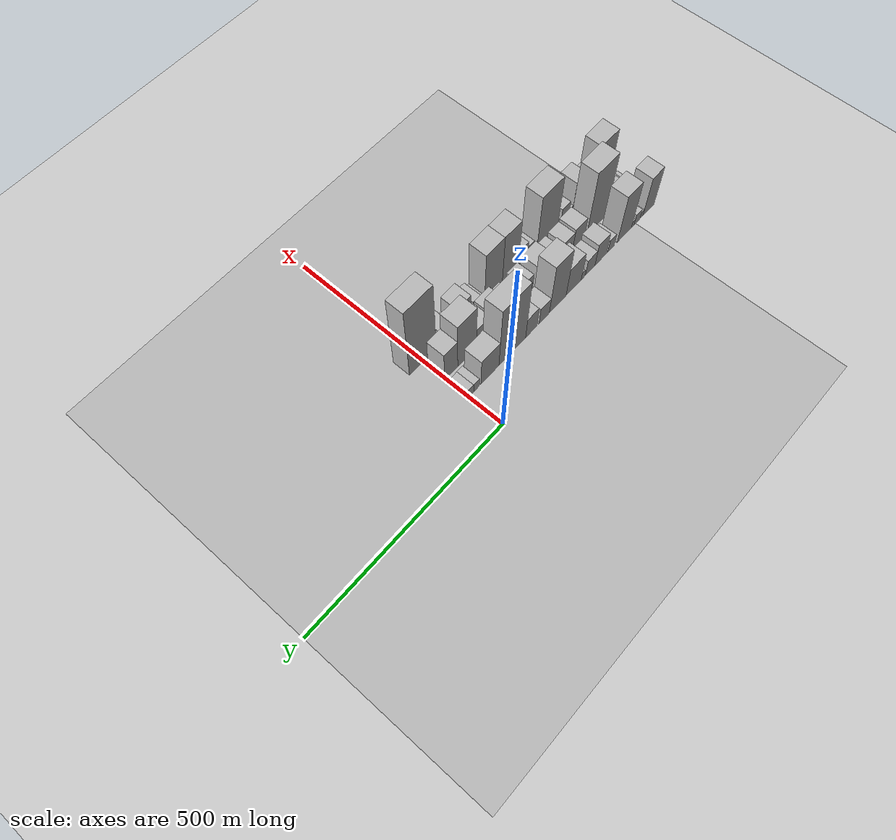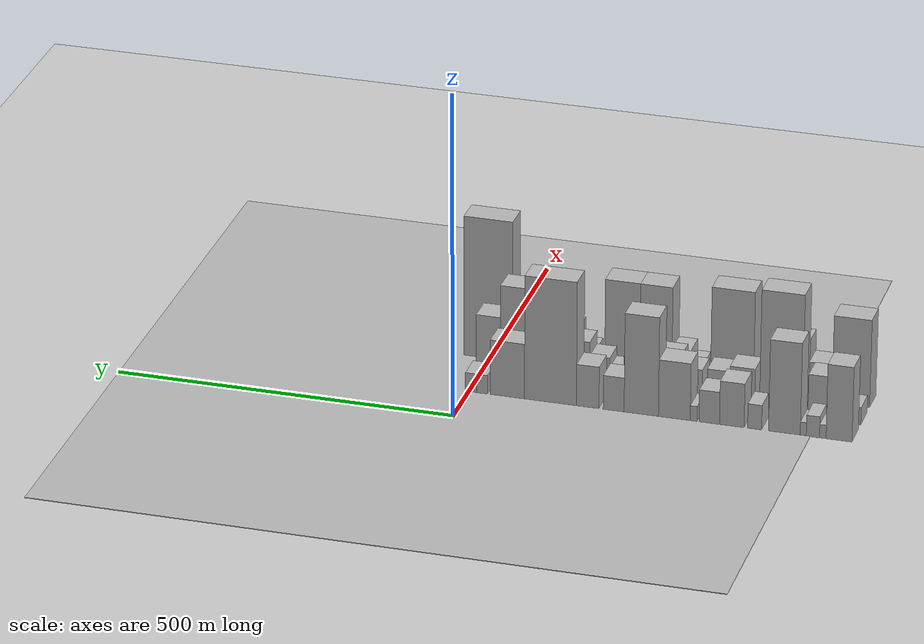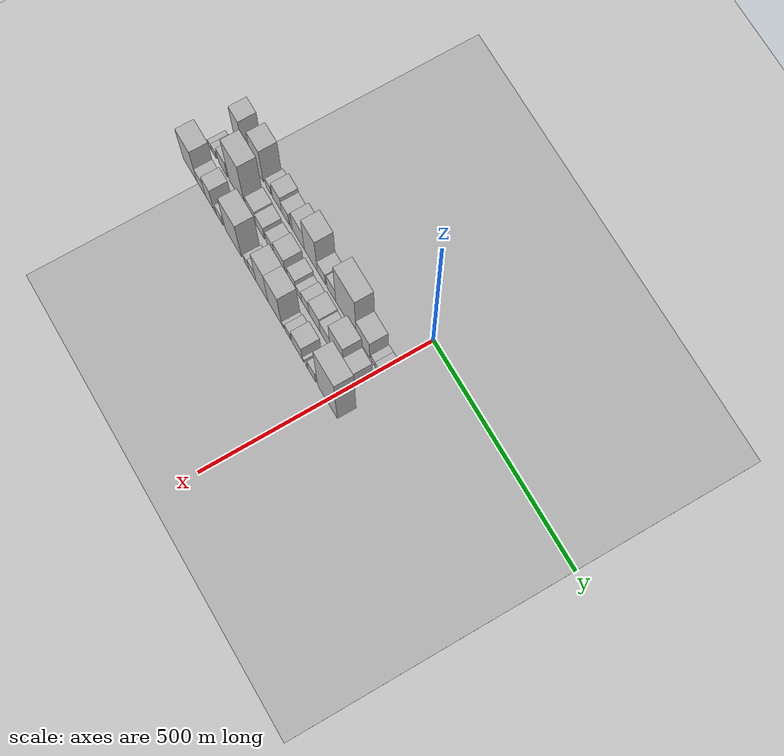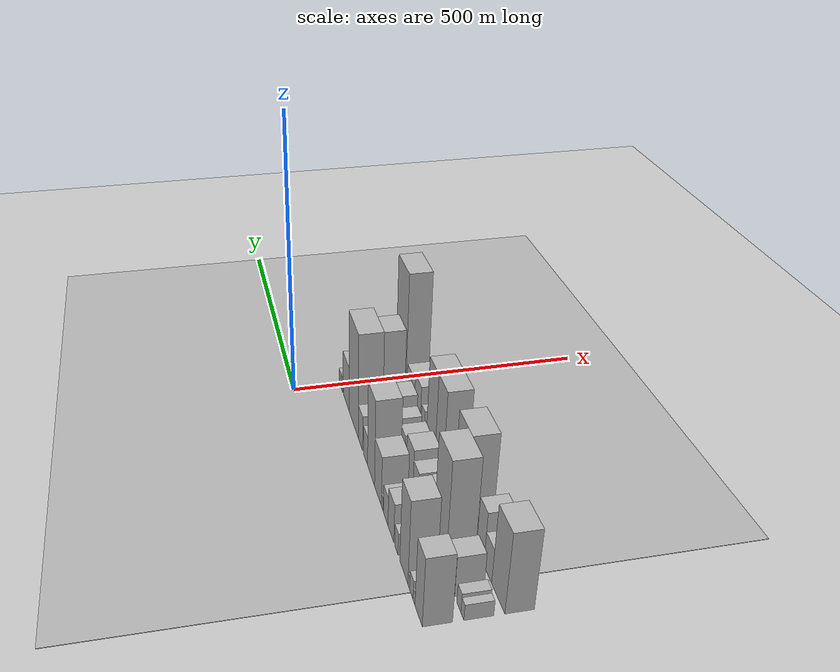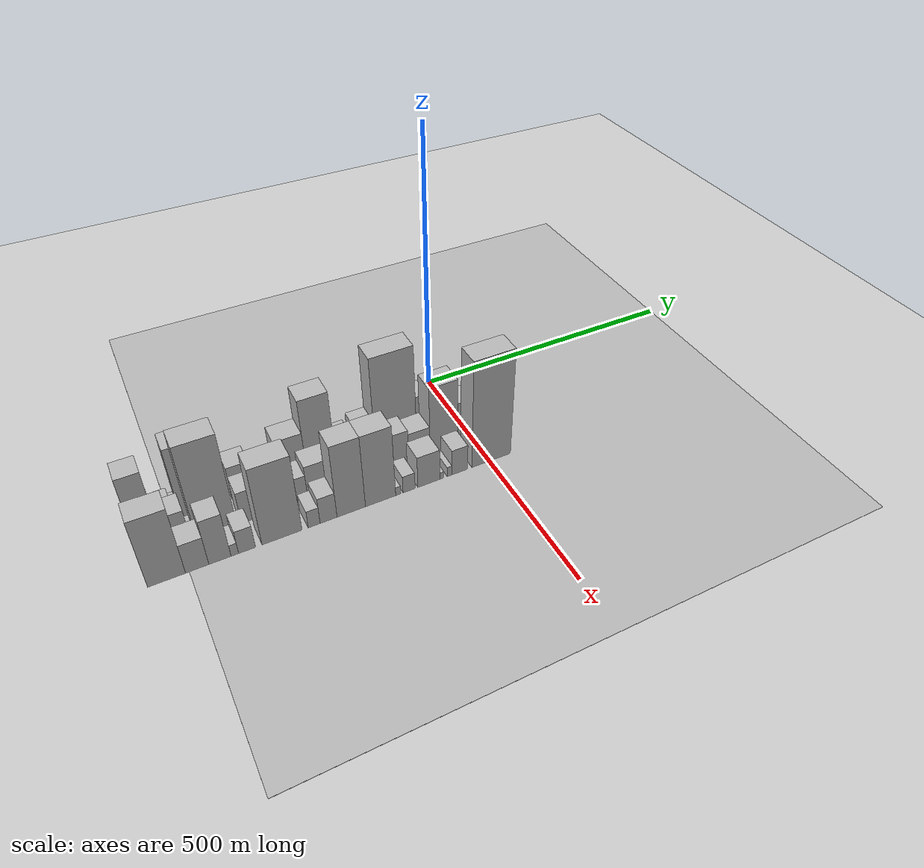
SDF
<sdf version="1.6">
 <world name="default">
  <include><name>ground_plane_1</name><uri>model://HANNAS_ground_plane</uri></include>
  <include>
   <name>ground_plane_2</name>
   <uri>model://HANNAS_ground_plane</uri>
   <pose>100 0 0  0 0 0</pose>
  </include>
  <model name="building_1">
   <static>1</static>
   <pose>100.0000 -541.2962 0 0.000000 0.000000 0.000000</pose>
   <link name="link">
    <pose>0 0 58.50 0 0 0</pose>
    <collision name="collision"><geometry><box><size>40.0000 37.4076 117.0000</size></box></geometry></collision>
    <visual name="visual">
     <cast_shadows>0</cast_shadows>
     <geometry><box><size>40.0000 37.4076 117.0000</size></box></geometry>
     <material>
      <script>
       <uri>model://HANNAS_wall/materials/scripts</uri>
       <uri>model://HANNAS_wall/materials/textures</uri>
       <name>vrc/HANNAS_wall</name>
      </script>
     </material>
    </visual>
   </link>
  </model>
  <model name="building_2">
   <static>1</static>
   <pose>100.0000 -517.8946 0 0.000000 0.000000 0.000000</pose>
   <link name="link">
    <pose>0 0 10.50 0 0 0</pose>
    <collision name="collision"><geometry><box><size>40.0000 9.3956 21.0000</size></box></geometry></collision>
    <visual name="visual">
     <cast_shadows>0</cast_shadows>
     <geometry><box><size>40.0000 9.3956 21.0000</size></box></geometry>
     <material>
      <script>
       <uri>model://HANNAS_wall/materials/scripts</uri>
       <uri>model://HANNAS_wall/materials/textures</uri>
       <name>vrc/HANNAS_wall</name>
      </script>
     </material>
    </visual>
   </link>
  </model>
  <model name="building_3">
   <static>1</static>
   <pose>100.0000 -503.5734 0 0.000000 0.000000 0.000000</pose>
   <link name="link">
    <pose>0 0 16.50 0 0 0</pose>
    <collision name="collision"><geometry><box><size>40.0000 19.2466 33.0000</size></box></geometry></collision>
    <visual name="visual">
     <cast_shadows>0</cast_shadows>
     <geometry><box><size>40.0000 19.2466 33.0000</size></box></geometry>
     <material>
      <script>
       <uri>model://HANNAS_wall/materials/scripts</uri>
       <uri>model://HANNAS_wall/materials/textures</uri>
       <name>vrc/HANNAS_wall</name>
      </script>
     </material>
    </visual>
   </link>
  </model>
  <model name="building_4">
   <static>1</static>
   <pose>100.0000 -489.6087 0 0.000000 0.000000 0.000000</pose>
   <link name="link">
    <pose>0 0 10.50 0 0 0</pose>
    <collision name="collision"><geometry><box><size>40.0000 8.6828 21.0000</size></box></geometry></collision>
    <visual name="visual">
     <cast_shadows>0</cast_shadows>
     <geometry><box><size>40.0000 8.6828 21.0000</size></box></geometry>
     <material>
      <script>
       <uri>model://HANNAS_wall/materials/scripts</uri>
       <uri>model://HANNAS_wall/materials/textures</uri>
       <name>vrc/HANNAS_wall</name>
      </script>
     </material>
    </visual>
   </link>
  </model>
  <model name="building_5">
   <static>1</static>
   <pose>100.0000 -462.3022 0 0.000000 0.000000 0.000000</pose>
   <link name="link">
    <pose>0 0 72.00 0 0 0</pose>
    <collision name="collision"><geometry><box><size>40.0000 45.9303 144.0000</size></box></geometry></collision>
    <visual name="visual">
     <cast_shadows>0</cast_shadows>
     <geometry><box><size>40.0000 45.9303 144.0000</size></box></geometry>
     <material>
      <script>
       <uri>model://HANNAS_wall/materials/scripts</uri>
       <uri>model://HANNAS_wall/materials/textures</uri>
       <name>vrc/HANNAS_wall</name>
      </script>
     </material>
    </visual>
   </link>
  </model>
  <model name="building_6">
   <static>1</static>
   <pose>100.0000 -419.1466 0 0.000000 0.000000 0.000000</pose>
   <link name="link">
    <pose>0 0 19.50 0 0 0</pose>
    <collision name="collision"><geometry><box><size>40.0000 20.3808 39.0000</size></box></geometry></collision>
    <visual name="visual">
     <cast_shadows>0</cast_shadows>
     <geometry><box><size>40.0000 20.3808 39.0000</size></box></geometry>
     <material>
      <script>
       <uri>model://HANNAS_wall/materials/scripts</uri>
       <uri>model://HANNAS_wall/materials/textures</uri>
       <name>vrc/HANNAS_wall</name>
      </script>
     </material>
    </visual>
   </link>
  </model>
  <model name="building_7">
   <static>1</static>
   <pose>100.0000 -386.0449 0 0.000000 0.000000 0.000000</pose>
   <link name="link">
    <pose>0 0 34.50 0 0 0</pose>
    <collision name="collision"><geometry><box><size>40.0000 35.8226 69.0000</size></box></geometry></collision>
    <visual name="visual">
     <cast_shadows>0</cast_shadows>
     <geometry><box><size>40.0000 35.8226 69.0000</size></box></geometry>
     <material>
      <script>
       <uri>model://HANNAS_wall/materials/scripts</uri>
       <uri>model://HANNAS_wall/materials/textures</uri>
       <name>vrc/HANNAS_wall</name>
      </script>
     </material>
    </visual>
   </link>
  </model>
  <model name="building_8">
   <static>1</static>
   <pose>100.0000 -353.2586 0 0.000000 0.000000 0.000000</pose>
   <link name="link">
    <pose>0 0 25.50 0 0 0</pose>
    <collision name="collision"><geometry><box><size>40.0000 29.7500 51.0000</size></box></geometry></collision>
    <visual name="visual">
     <cast_shadows>0</cast_shadows>
     <geometry><box><size>40.0000 29.7500 51.0000</size></box></geometry>
     <material>
      <script>
       <uri>model://HANNAS_wall/materials/scripts</uri>
       <uri>model://HANNAS_wall/materials/textures</uri>
       <name>vrc/HANNAS_wall</name>
      </script>
     </material>
    </visual>
   </link>
  </model>
  <model name="building_9">
   <static>1</static>
   <pose>100.0000 -330.4575 0 0.000000 0.000000 0.000000</pose>
   <link name="link">
    <pose>0 0 12.00 0 0 0</pose>
    <collision name="collision"><geometry><box><size>40.0000 9.8521 24.0000</size></box></geometry></collision>
    <visual name="visual">
     <cast_shadows>0</cast_shadows>
     <geometry><box><size>40.0000 9.8521 24.0000</size></box></geometry>
     <material>
      <script>
       <uri>model://HANNAS_wall/materials/scripts</uri>
       <uri>model://HANNAS_wall/materials/textures</uri>
       <name>vrc/HANNAS_wall</name>
      </script>
     </material>
    </visual>
   </link>
  </model>
  <model name="building_10">
   <static>1</static>
   <pose>100.0000 -302.2651 0 0.000000 0.000000 0.000000</pose>
   <link name="link">
    <pose>0 0 45.00 0 0 0</pose>
    <collision name="collision"><geometry><box><size>40.0000 46.5325 90.0000</size></box></geometry></collision>
    <visual name="visual">
     <cast_shadows>0</cast_shadows>
     <geometry><box><size>40.0000 46.5325 90.0000</size></box></geometry>
     <material>
      <script>
       <uri>model://HANNAS_wall/materials/scripts</uri>
       <uri>model://HANNAS_wall/materials/textures</uri>
       <name>vrc/HANNAS_wall</name>
      </script>
     </material>
    </visual>
   </link>
  </model>
  <model name="building_11">
   <static>1</static>
   <pose>100.0000 -253.8668 0 0.000000 0.000000 0.000000</pose>
   <link name="link">
    <pose>0 0 78.00 0 0 0</pose>
    <collision name="collision"><geometry><box><size>40.0000 50.2642 156.0000</size></box></geometry></collision>
    <visual name="visual">
     <cast_shadows>0</cast_shadows>
     <geometry><box><size>40.0000 50.2642 156.0000</size></box></geometry>
     <material>
      <script>
       <uri>model://HANNAS_wall/materials/scripts</uri>
       <uri>model://HANNAS_wall/materials/textures</uri>
       <name>vrc/HANNAS_wall</name>
      </script>
     </material>
    </visual>
   </link>
  </model>
  <model name="building_12">
   <static>1</static>
   <pose>100.0000 -213.3457 0 0.000000 0.000000 0.000000</pose>
   <link name="link">
    <pose>0 0 27.00 0 0 0</pose>
    <collision name="collision"><geometry><box><size>40.0000 30.7780 54.0000</size></box></geometry></collision>
    <visual name="visual">
     <cast_shadows>0</cast_shadows>
     <geometry><box><size>40.0000 30.7780 54.0000</size></box></geometry>
     <material>
      <script>
       <uri>model://HANNAS_wall/materials/scripts</uri>
       <uri>model://HANNAS_wall/materials/textures</uri>
       <name>vrc/HANNAS_wall</name>
      </script>
     </material>
    </visual>
   </link>
  </model>
  <model name="building_13">
   <static>1</static>
   <pose>100.0000 -175.3187 0 0.000000 0.000000 0.000000</pose>
   <link name="link">
    <pose>0 0 33.00 0 0 0</pose>
    <collision name="collision"><geometry><box><size>40.0000 33.2759 66.0000</size></box></geometry></collision>
    <visual name="visual">
     <cast_shadows>0</cast_shadows>
     <geometry><box><size>40.0000 33.2759 66.0000</size></box></geometry>
     <material>
      <script>
       <uri>model://HANNAS_wall/materials/scripts</uri>
       <uri>model://HANNAS_wall/materials/textures</uri>
       <name>vrc/HANNAS_wall</name>
      </script>
     </material>
    </visual>
   </link>
  </model>
  <model name="building_14">
   <static>1</static>
   <pose>100.0000 -120.3680 0 0.000000 0.000000 0.000000</pose>
   <link name="link">
    <pose>0 0 97.50 0 0 0</pose>
    <collision name="collision"><geometry><box><size>40.0000 76.6255 195.0000</size></box></geometry></collision>
    <visual name="visual">
     <cast_shadows>0</cast_shadows>
     <geometry><box><size>40.0000 76.6255 195.0000</size></box></geometry>
     <material>
      <script>
       <uri>model://HANNAS_wall/materials/scripts</uri>
       <uri>model://HANNAS_wall/materials/textures</uri>
       <name>vrc/HANNAS_wall</name>
      </script>
     </material>
    </visual>
   </link>
  </model>
  <model name="building_15">
   <static>1</static>
   <pose>100.0000 -56.7692 0 0.000000 0.000000 0.000000</pose>
   <link name="link">
    <pose>0 0 43.50 0 0 0</pose>
    <collision name="collision"><geometry><box><size>40.0000 50.5721 87.0000</size></box></geometry></collision>
    <visual name="visual">
     <cast_shadows>0</cast_shadows>
     <geometry><box><size>40.0000 50.5721 87.0000</size></box></geometry>
     <material>
      <script>
       <uri>model://HANNAS_wall/materials/scripts</uri>
       <uri>model://HANNAS_wall/materials/textures</uri>
       <name>vrc/HANNAS_wall</name>
      </script>
     </material>
    </visual>
   </link>
  </model>
  <model name="building_16">
   <static>1</static>
   <pose>100.0000 -19.5867 0 0.000000 0.000000 0.000000</pose>
   <link name="link">
    <pose>0 0 15.00 0 0 0</pose>
    <collision name="collision"><geometry><box><size>40.0000 15.7928 30.0000</size></box></geometry></collision>
    <visual name="visual">
     <cast_shadows>0</cast_shadows>
     <geometry><box><size>40.0000 15.7928 30.0000</size></box></geometry>
     <material>
      <script>
       <uri>model://HANNAS_wall/materials/scripts</uri>
       <uri>model://HANNAS_wall/materials/textures</uri>
       <name>vrc/HANNAS_wall</name>
      </script>
     </material>
    </visual>
   </link>
  </model>
  <model name="building_17">
   <static>1</static>
   <pose>100.0000 -3.1925 0 0.000000 0.000000 0.000000</pose>
   <link name="link">
    <pose>0 0 15.00 0 0 0</pose>
    <collision name="collision"><geometry><box><size>40.0000 16.9956 30.0000</size></box></geometry></collision>
    <visual name="visual">
     <cast_shadows>0</cast_shadows>
     <geometry><box><size>40.0000 16.9956 30.0000</size></box></geometry>
     <material>
      <script>
       <uri>model://HANNAS_wall/materials/scripts</uri>
       <uri>model://HANNAS_wall/materials/textures</uri>
       <name>vrc/HANNAS_wall</name>
      </script>
     </material>
    </visual>
   </link>
  </model>
  <model name="building_34">
   <static>1</static>
   <pose>155.0000 -553.3637 0 0.000000 0.000000 0.000000</pose>
   <link name="link">
    <pose>0 0 13.50 0 0 0</pose>
    <collision name="collision"><geometry><box><size>40.0000 13.2726 27.0000</size></box></geometry></collision>
    <visual name="visual">
     <cast_shadows>0</cast_shadows>
     <geometry><box><size>40.0000 13.2726 27.0000</size></box></geometry>
     <material>
      <script>
       <uri>model://HANNAS_wall/materials/scripts</uri>
       <uri>model://HANNAS_wall/materials/textures</uri>
       <name>vrc/HANNAS_wall</name>
      </script>
     </material>
    </visual>
   </link>
  </model>
  <model name="building_35">
   <static>1</static>
   <pose>155.0000 -537.4298 0 0.000000 0.000000 0.000000</pose>
   <link name="link">
    <pose>0 0 16.50 0 0 0</pose>
    <collision name="collision"><geometry><box><size>40.0000 18.5951 33.0000</size></box></geometry></collision>
    <visual name="visual">
     <cast_shadows>0</cast_shadows>
     <geometry><box><size>40.0000 18.5951 33.0000</size></box></geometry>
     <material>
      <script>
       <uri>model://HANNAS_wall/materials/scripts</uri>
       <uri>model://HANNAS_wall/materials/textures</uri>
       <name>vrc/HANNAS_wall</name>
      </script>
     </material>
    </visual>
   </link>
  </model>
  <model name="building_36">
   <static>1</static>
   <pose>155.0000 -500.6144 0 0.000000 0.000000 0.000000</pose>
   <link name="link">
    <pose>0 0 34.50 0 0 0</pose>
    <collision name="collision"><geometry><box><size>40.0000 35.0357 69.0000</size></box></geometry></collision>
    <visual name="visual">
     <cast_shadows>0</cast_shadows>
     <geometry><box><size>40.0000 35.0357 69.0000</size></box></geometry>
     <material>
      <script>
       <uri>model://HANNAS_wall/materials/scripts</uri>
       <uri>model://HANNAS_wall/materials/textures</uri>
       <name>vrc/HANNAS_wall</name>
      </script>
     </material>
    </visual>
   </link>
  </model>
  <model name="building_37">
   <static>1</static>
   <pose>155.0000 -443.8112 0 0.000000 0.000000 0.000000</pose>
   <link name="link">
    <pose>0 0 96.00 0 0 0</pose>
    <collision name="collision"><geometry><box><size>40.0000 62.5707 192.0000</size></box></geometry></collision>
    <visual name="visual">
     <cast_shadows>0</cast_shadows>
     <geometry><box><size>40.0000 62.5707 192.0000</size></box></geometry>
     <material>
      <script>
       <uri>model://HANNAS_wall/materials/scripts</uri>
       <uri>model://HANNAS_wall/materials/textures</uri>
       <name>vrc/HANNAS_wall</name>
      </script>
     </material>
    </visual>
   </link>
  </model>
  <model name="building_38">
   <static>1</static>
   <pose>155.0000 -387.2499 0 0.000000 0.000000 0.000000</pose>
   <link name="link">
    <pose>0 0 33.00 0 0 0</pose>
    <collision name="collision"><geometry><box><size>40.0000 36.5520 66.0000</size></box></geometry></collision>
    <visual name="visual">
     <cast_shadows>0</cast_shadows>
     <geometry><box><size>40.0000 36.5520 66.0000</size></box></geometry>
     <material>
      <script>
       <uri>model://HANNAS_wall/materials/scripts</uri>
       <uri>model://HANNAS_wall/materials/textures</uri>
       <name>vrc/HANNAS_wall</name>
      </script>
     </material>
    </visual>
   </link>
  </model>
  <model name="building_39">
   <static>1</static>
   <pose>155.0000 -352.4186 0 0.000000 0.000000 0.000000</pose>
   <link name="link">
    <pose>0 0 28.50 0 0 0</pose>
    <collision name="collision"><geometry><box><size>40.0000 33.1107 57.0000</size></box></geometry></collision>
    <visual name="visual">
     <cast_shadows>0</cast_shadows>
     <geometry><box><size>40.0000 33.1107 57.0000</size></box></geometry>
     <material>
      <script>
       <uri>model://HANNAS_wall/materials/scripts</uri>
       <uri>model://HANNAS_wall/materials/textures</uri>
       <name>vrc/HANNAS_wall</name>
      </script>
     </material>
    </visual>
   </link>
  </model>
  <model name="building_40">
   <static>1</static>
   <pose>155.0000 -313.0341 0 0.000000 0.000000 0.000000</pose>
   <link name="link">
    <pose>0 0 27.00 0 0 0</pose>
    <collision name="collision"><geometry><box><size>40.0000 31.6582 54.0000</size></box></geometry></collision>
    <visual name="visual">
     <cast_shadows>0</cast_shadows>
     <geometry><box><size>40.0000 31.6582 54.0000</size></box></geometry>
     <material>
      <script>
       <uri>model://HANNAS_wall/materials/scripts</uri>
       <uri>model://HANNAS_wall/materials/textures</uri>
       <name>vrc/HANNAS_wall</name>
      </script>
     </material>
    </visual>
   </link>
  </model>
  <model name="building_41">
   <static>1</static>
   <pose>155.0000 -276.1485 0 0.000000 0.000000 0.000000</pose>
   <link name="link">
    <pose>0 0 36.00 0 0 0</pose>
    <collision name="collision"><geometry><box><size>40.0000 42.1129 72.0000</size></box></geometry></collision>
    <visual name="visual">
     <cast_shadows>0</cast_shadows>
     <geometry><box><size>40.0000 42.1129 72.0000</size></box></geometry>
     <material>
      <script>
       <uri>model://HANNAS_wall/materials/scripts</uri>
       <uri>model://HANNAS_wall/materials/textures</uri>
       <name>vrc/HANNAS_wall</name>
      </script>
     </material>
    </visual>
   </link>
  </model>
  <model name="building_42">
   <static>1</static>
   <pose>155.0000 -229.2817 0 0.000000 0.000000 0.000000</pose>
   <link name="link">
    <pose>0 0 30.00 0 0 0</pose>
    <collision name="collision"><geometry><box><size>40.0000 31.6207 60.0000</size></box></geometry></collision>
    <visual name="visual">
     <cast_shadows>0</cast_shadows>
     <geometry><box><size>40.0000 31.6207 60.0000</size></box></geometry>
     <material>
      <script>
       <uri>model://HANNAS_wall/materials/scripts</uri>
       <uri>model://HANNAS_wall/materials/textures</uri>
       <name>vrc/HANNAS_wall</name>
      </script>
     </material>
    </visual>
   </link>
  </model>
  <model name="building_43">
   <static>1</static>
   <pose>155.0000 -203.0780 0 0.000000 0.000000 0.000000</pose>
   <link name="link">
    <pose>0 0 19.50 0 0 0</pose>
    <collision name="collision"><geometry><box><size>40.0000 20.7868 39.0000</size></box></geometry></collision>
    <visual name="visual">
     <cast_shadows>0</cast_shadows>
     <geometry><box><size>40.0000 20.7868 39.0000</size></box></geometry>
     <material>
      <script>
       <uri>model://HANNAS_wall/materials/scripts</uri>
       <uri>model://HANNAS_wall/materials/textures</uri>
       <name>vrc/HANNAS_wall</name>
      </script>
     </material>
    </visual>
   </link>
  </model>
  <model name="building_44">
   <static>1</static>
   <pose>155.0000 -177.9246 0 0.000000 0.000000 0.000000</pose>
   <link name="link">
    <pose>0 0 27.00 0 0 0</pose>
    <collision name="collision"><geometry><box><size>40.0000 29.5202 54.0000</size></box></geometry></collision>
    <visual name="visual">
     <cast_shadows>0</cast_shadows>
     <geometry><box><size>40.0000 29.5202 54.0000</size></box></geometry>
     <material>
      <script>
       <uri>model://HANNAS_wall/materials/scripts</uri>
       <uri>model://HANNAS_wall/materials/textures</uri>
       <name>vrc/HANNAS_wall</name>
      </script>
     </material>
    </visual>
   </link>
  </model>
  <model name="building_45">
   <static>1</static>
   <pose>155.0000 -142.4565 0 0.000000 0.000000 0.000000</pose>
   <link name="link">
    <pose>0 0 37.50 0 0 0</pose>
    <collision name="collision"><geometry><box><size>40.0000 41.4160 75.0000</size></box></geometry></collision>
    <visual name="visual">
     <cast_shadows>0</cast_shadows>
     <geometry><box><size>40.0000 41.4160 75.0000</size></box></geometry>
     <material>
      <script>
       <uri>model://HANNAS_wall/materials/scripts</uri>
       <uri>model://HANNAS_wall/materials/textures</uri>
       <name>vrc/HANNAS_wall</name>
      </script>
     </material>
    </visual>
   </link>
  </model>
  <model name="building_46">
   <static>1</static>
   <pose>155.0000 -102.2230 0 0.000000 0.000000 0.000000</pose>
   <link name="link">
    <pose>0 0 33.00 0 0 0</pose>
    <collision name="collision"><geometry><box><size>40.0000 39.0508 66.0000</size></box></geometry></collision>
    <visual name="visual">
     <cast_shadows>0</cast_shadows>
     <geometry><box><size>40.0000 39.0508 66.0000</size></box></geometry>
     <material>
      <script>
       <uri>model://HANNAS_wall/materials/scripts</uri>
       <uri>model://HANNAS_wall/materials/textures</uri>
       <name>vrc/HANNAS_wall</name>
      </script>
     </material>
    </visual>
   </link>
  </model>
  <model name="building_47">
   <static>1</static>
   <pose>155.0000 -56.7826 0 0.000000 0.000000 0.000000</pose>
   <link name="link">
    <pose>0 0 73.50 0 0 0</pose>
    <collision name="collision"><geometry><box><size>40.0000 51.8300 147.0000</size></box></geometry></collision>
    <visual name="visual">
     <cast_shadows>0</cast_shadows>
     <geometry><box><size>40.0000 51.8300 147.0000</size></box></geometry>
     <material>
      <script>
       <uri>model://HANNAS_wall/materials/scripts</uri>
       <uri>model://HANNAS_wall/materials/textures</uri>
       <name>vrc/HANNAS_wall</name>
      </script>
     </material>
    </visual>
   </link>
  </model>
  <model name="building_48">
   <static>1</static>
   <pose>155.0000 -12.8185 0 0.000000 0.000000 0.000000</pose>
   <link name="link">
    <pose>0 0 48.00 0 0 0</pose>
    <collision name="collision"><geometry><box><size>40.0000 36.0981 96.0000</size></box></geometry></collision>
    <visual name="visual">
     <cast_shadows>0</cast_shadows>
     <geometry><box><size>40.0000 36.0981 96.0000</size></box></geometry>
     <material>
      <script>
       <uri>model://HANNAS_wall/materials/scripts</uri>
       <uri>model://HANNAS_wall/materials/textures</uri>
       <name>vrc/HANNAS_wall</name>
      </script>
     </material>
    </visual>
   </link>
  </model>
  <model name="building_68">
   <static>1</static>
   <pose>210.0000 -532.6319 0 0.000000 0.000000 0.000000</pose>
   <link name="link">
    <pose>0 0 69.00 0 0 0</pose>
    <collision name="collision"><geometry><box><size>40.0000 54.7363 138.0000</size></box></geometry></collision>
    <visual name="visual">
     <cast_shadows>0</cast_shadows>
     <geometry><box><size>40.0000 54.7363 138.0000</size></box></geometry>
     <material>
      <script>
       <uri>model://HANNAS_wall/materials/scripts</uri>
       <uri>model://HANNAS_wall/materials/textures</uri>
       <name>vrc/HANNAS_wall</name>
      </script>
     </material>
    </visual>
   </link>
  </model>
  <model name="building_69">
   <static>1</static>
   <pose>210.0000 -488.0710 0 0.000000 0.000000 0.000000</pose>
   <link name="link">
    <pose>0 0 30.00 0 0 0</pose>
    <collision name="collision"><geometry><box><size>40.0000 34.3854 60.0000</size></box></geometry></collision>
    <visual name="visual">
     <cast_shadows>0</cast_shadows>
     <geometry><box><size>40.0000 34.3854 60.0000</size></box></geometry>
     <material>
      <script>
       <uri>model://HANNAS_wall/materials/scripts</uri>
       <uri>model://HANNAS_wall/materials/textures</uri>
       <name>vrc/HANNAS_wall</name>
      </script>
     </material>
    </visual>
   </link>
  </model>
  <model name="building_70">
   <static>1</static>
   <pose>210.0000 -454.2715 0 0.000000 0.000000 0.000000</pose>
   <link name="link">
    <pose>0 0 46.50 0 0 0</pose>
    <collision name="collision"><geometry><box><size>40.0000 33.2136 93.0000</size></box></geometry></collision>
    <visual name="visual">
     <cast_shadows>0</cast_shadows>
     <geometry><box><size>40.0000 33.2136 93.0000</size></box></geometry>
     <material>
      <script>
       <uri>model://HANNAS_wall/materials/scripts</uri>
       <uri>model://HANNAS_wall/materials/textures</uri>
       <name>vrc/HANNAS_wall</name>
      </script>
     </material>
    </visual>
   </link>
  </model>
  <model name="building_71">
   <static>1</static>
   <pose>210.0000 -431.9644 0 0.000000 0.000000 0.000000</pose>
   <link name="link">
    <pose>0 0 12.00 0 0 0</pose>
    <collision name="collision"><geometry><box><size>40.0000 11.4006 24.0000</size></box></geometry></collision>
    <visual name="visual">
     <cast_shadows>0</cast_shadows>
     <geometry><box><size>40.0000 11.4006 24.0000</size></box></geometry>
     <material>
      <script>
       <uri>model://HANNAS_wall/materials/scripts</uri>
       <uri>model://HANNAS_wall/materials/textures</uri>
       <name>vrc/HANNAS_wall</name>
      </script>
     </material>
    </visual>
   </link>
  </model>
  <model name="building_72">
   <static>1</static>
   <pose>210.0000 -413.2347 0 0.000000 0.000000 0.000000</pose>
   <link name="link">
    <pose>0 0 24.00 0 0 0</pose>
    <collision name="collision"><geometry><box><size>40.0000 26.0588 48.0000</size></box></geometry></collision>
    <visual name="visual">
     <cast_shadows>0</cast_shadows>
     <geometry><box><size>40.0000 26.0588 48.0000</size></box></geometry>
     <material>
      <script>
       <uri>model://HANNAS_wall/materials/scripts</uri>
       <uri>model://HANNAS_wall/materials/textures</uri>
       <name>vrc/HANNAS_wall</name>
      </script>
     </material>
    </visual>
   </link>
  </model>
  <model name="building_73">
   <static>1</static>
   <pose>210.0000 -358.5939 0 0.000000 0.000000 0.000000</pose>
   <link name="link">
    <pose>0 0 79.50 0 0 0</pose>
    <collision name="collision"><geometry><box><size>40.0000 63.2230 159.0000</size></box></geometry></collision>
    <visual name="visual">
     <cast_shadows>0</cast_shadows>
     <geometry><box><size>40.0000 63.2230 159.0000</size></box></geometry>
     <material>
      <script>
       <uri>model://HANNAS_wall/materials/scripts</uri>
       <uri>model://HANNAS_wall/materials/textures</uri>
       <name>vrc/HANNAS_wall</name>
      </script>
     </material>
    </visual>
   </link>
  </model>
  <model name="building_74">
   <static>1</static>
   <pose>210.0000 -307.3504 0 0.000000 0.000000 0.000000</pose>
   <link name="link">
    <pose>0 0 18.00 0 0 0</pose>
    <collision name="collision"><geometry><box><size>40.0000 19.2640 36.0000</size></box></geometry></collision>
    <visual name="visual">
     <cast_shadows>0</cast_shadows>
     <geometry><box><size>40.0000 19.2640 36.0000</size></box></geometry>
     <material>
      <script>
       <uri>model://HANNAS_wall/materials/scripts</uri>
       <uri>model://HANNAS_wall/materials/textures</uri>
       <name>vrc/HANNAS_wall</name>
      </script>
     </material>
    </visual>
   </link>
  </model>
  <model name="building_75">
   <static>1</static>
   <pose>210.0000 -283.8153 0 0.000000 0.000000 0.000000</pose>
   <link name="link">
    <pose>0 0 27.00 0 0 0</pose>
    <collision name="collision"><geometry><box><size>40.0000 27.8063 54.0000</size></box></geometry></collision>
    <visual name="visual">
     <cast_shadows>0</cast_shadows>
     <geometry><box><size>40.0000 27.8063 54.0000</size></box></geometry>
     <material>
      <script>
       <uri>model://HANNAS_wall/materials/scripts</uri>
       <uri>model://HANNAS_wall/materials/textures</uri>
       <name>vrc/HANNAS_wall</name>
      </script>
     </material>
    </visual>
   </link>
  </model>
  <model name="building_76">
   <static>1</static>
   <pose>210.0000 -246.1231 0 0.000000 0.000000 0.000000</pose>
   <link name="link">
    <pose>0 0 75.00 0 0 0</pose>
    <collision name="collision"><geometry><box><size>40.0000 47.5782 150.0000</size></box></geometry></collision>
    <visual name="visual">
     <cast_shadows>0</cast_shadows>
     <geometry><box><size>40.0000 47.5782 150.0000</size></box></geometry>
     <material>
      <script>
       <uri>model://HANNAS_wall/materials/scripts</uri>
       <uri>model://HANNAS_wall/materials/textures</uri>
       <name>vrc/HANNAS_wall</name>
      </script>
     </material>
    </visual>
   </link>
  </model>
  <model name="building_77">
   <static>1</static>
   <pose>210.0000 -196.4227 0 0.000000 0.000000 0.000000</pose>
   <link name="link">
    <pose>0 0 75.00 0 0 0</pose>
    <collision name="collision"><geometry><box><size>40.0000 51.8225 150.0000</size></box></geometry></collision>
    <visual name="visual">
     <cast_shadows>0</cast_shadows>
     <geometry><box><size>40.0000 51.8225 150.0000</size></box></geometry>
     <material>
      <script>
       <uri>model://HANNAS_wall/materials/scripts</uri>
       <uri>model://HANNAS_wall/materials/textures</uri>
       <name>vrc/HANNAS_wall</name>
      </script>
     </material>
    </visual>
   </link>
  </model>
  <model name="building_78">
   <static>1</static>
   <pose>210.0000 -166.0939 0 0.000000 0.000000 0.000000</pose>
   <link name="link">
    <pose>0 0 9.00 0 0 0</pose>
    <collision name="collision"><geometry><box><size>40.0000 8.8353 18.0000</size></box></geometry></collision>
    <visual name="visual">
     <cast_shadows>0</cast_shadows>
     <geometry><box><size>40.0000 8.8353 18.0000</size></box></geometry>
     <material>
      <script>
       <uri>model://HANNAS_wall/materials/scripts</uri>
       <uri>model://HANNAS_wall/materials/textures</uri>
       <name>vrc/HANNAS_wall</name>
      </script>
     </material>
    </visual>
   </link>
  </model>
  <model name="building_79">
   <static>1</static>
   <pose>210.0000 -147.1011 0 0.000000 0.000000 0.000000</pose>
   <link name="link">
    <pose>0 0 18.00 0 0 0</pose>
    <collision name="collision"><geometry><box><size>40.0000 21.1502 36.0000</size></box></geometry></collision>
    <visual name="visual">
     <cast_shadows>0</cast_shadows>
     <geometry><box><size>40.0000 21.1502 36.0000</size></box></geometry>
     <material>
      <script>
       <uri>model://HANNAS_wall/materials/scripts</uri>
       <uri>model://HANNAS_wall/materials/textures</uri>
       <name>vrc/HANNAS_wall</name>
      </script>
     </material>
    </visual>
   </link>
  </model>
  <model name="building_80">
   <static>1</static>
   <pose>210.0000 -111.7602 0 0.000000 0.000000 0.000000</pose>
   <link name="link">
    <pose>0 0 33.00 0 0 0</pose>
    <collision name="collision"><geometry><box><size>40.0000 39.5315 66.0000</size></box></geometry></collision>
    <visual name="visual">
     <cast_shadows>0</cast_shadows>
     <geometry><box><size>40.0000 39.5315 66.0000</size></box></geometry>
     <material>
      <script>
       <uri>model://HANNAS_wall/materials/scripts</uri>
       <uri>model://HANNAS_wall/materials/textures</uri>
       <name>vrc/HANNAS_wall</name>
      </script>
     </material>
    </visual>
   </link>
  </model>
  <model name="building_81">
   <static>1</static>
   <pose>210.0000 -88.4460 0 0.000000 0.000000 0.000000</pose>
   <link name="link">
    <pose>0 0 7.50 0 0 0</pose>
    <collision name="collision"><geometry><box><size>40.0000 7.0969 15.0000</size></box></geometry></collision>
    <visual name="visual">
     <cast_shadows>0</cast_shadows>
     <geometry><box><size>40.0000 7.0969 15.0000</size></box></geometry>
     <material>
      <script>
       <uri>model://HANNAS_wall/materials/scripts</uri>
       <uri>model://HANNAS_wall/materials/textures</uri>
       <name>vrc/HANNAS_wall</name>
      </script>
     </material>
    </visual>
   </link>
  </model>
  <model name="building_82">
   <static>1</static>
   <pose>210.0000 -74.5201 0 0.000000 0.000000 0.000000</pose>
   <link name="link">
    <pose>0 0 10.50 0 0 0</pose>
    <collision name="collision"><geometry><box><size>40.0000 8.7549 21.0000</size></box></geometry></collision>
    <visual name="visual">
     <cast_shadows>0</cast_shadows>
     <geometry><box><size>40.0000 8.7549 21.0000</size></box></geometry>
     <material>
      <script>
       <uri>model://HANNAS_wall/materials/scripts</uri>
       <uri>model://HANNAS_wall/materials/textures</uri>
       <name>vrc/HANNAS_wall</name>
      </script>
     </material>
    </visual>
   </link>
  </model>
  <model name="building_83">
   <static>1</static>
   <pose>210.0000 -55.7475 0 0.000000 0.000000 0.000000</pose>
   <link name="link">
    <pose>0 0 27.00 0 0 0</pose>
    <collision name="collision"><geometry><box><size>40.0000 28.7904 54.0000</size></box></geometry></collision>
    <visual name="visual">
     <cast_shadows>0</cast_shadows>
     <geometry><box><size>40.0000 28.7904 54.0000</size></box></geometry>
     <material>
      <script>
       <uri>model://HANNAS_wall/materials/scripts</uri>
       <uri>model://HANNAS_wall/materials/textures</uri>
       <name>vrc/HANNAS_wall</name>
      </script>
     </material>
    </visual>
   </link>
  </model>
  <model name="building_84">
   <static>1</static>
   <pose>210.0000 3.0683 0 0.000000 0.000000 0.000000</pose>
   <link name="link">
    <pose>0 0 111.00 0 0 0</pose>
    <collision name="collision"><geometry><box><size>40.0000 72.8411 222.0000</size></box></geometry></collision>
    <visual name="visual">
     <cast_shadows>0</cast_shadows>
     <geometry><box><size>40.0000 72.8411 222.0000</size></box></geometry>
     <material>
      <script>
       <uri>model://HANNAS_wall/materials/scripts</uri>
       <uri>model://HANNAS_wall/materials/textures</uri>
       <name>vrc/HANNAS_wall</name>
      </script>
     </material>
    </visual>
   </link>
  </model>
 </world>
</sdf>
